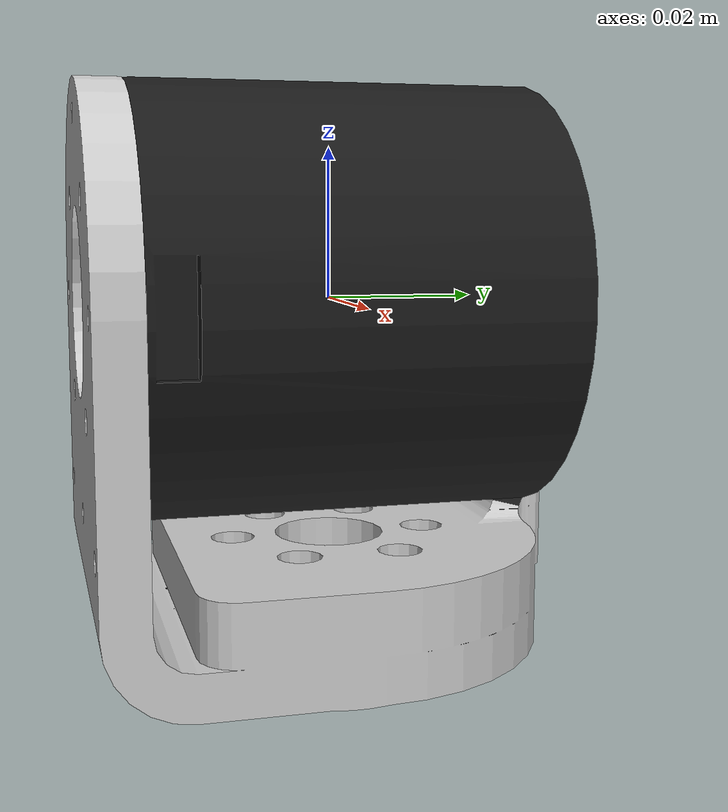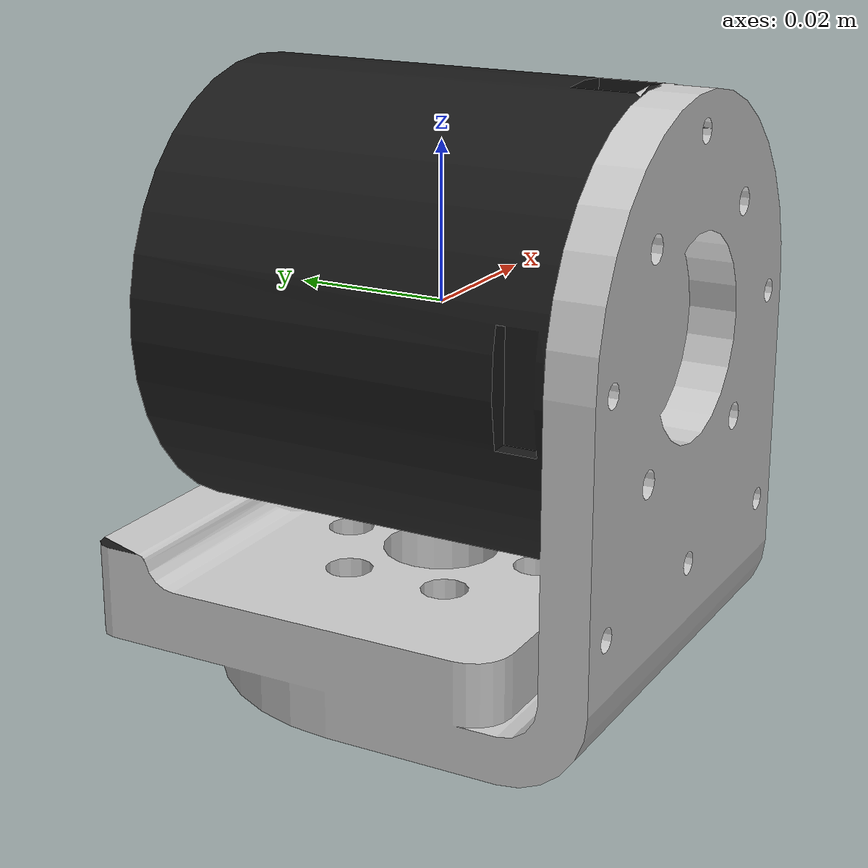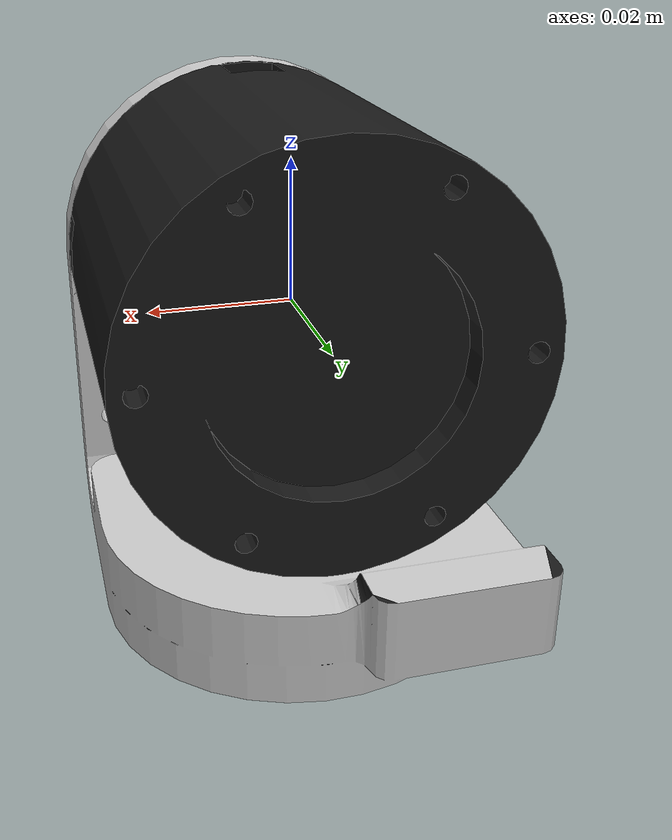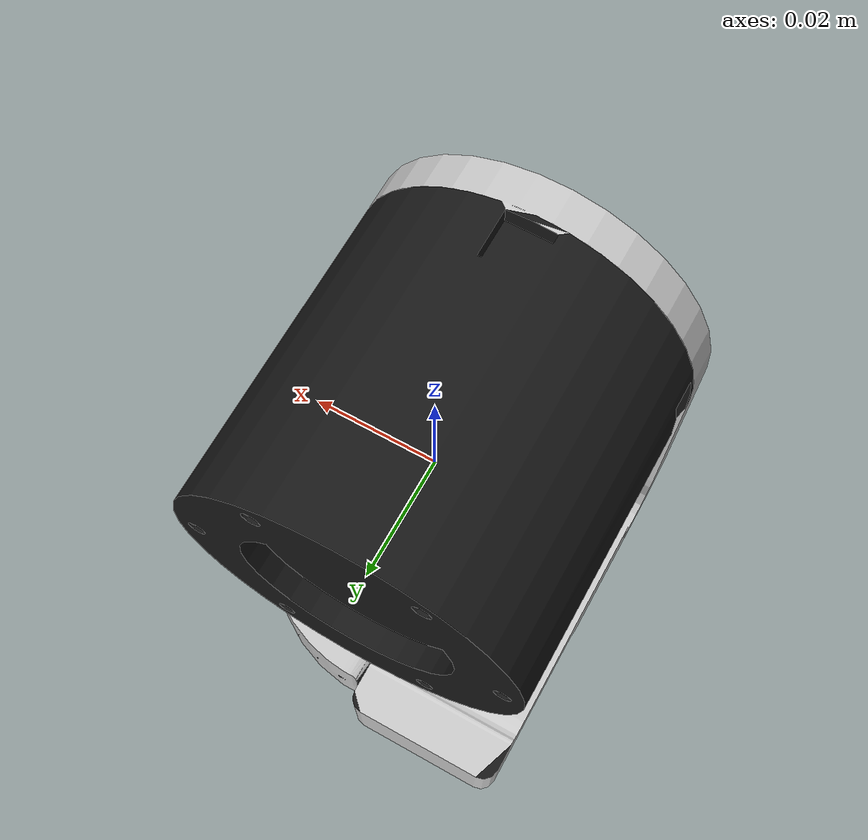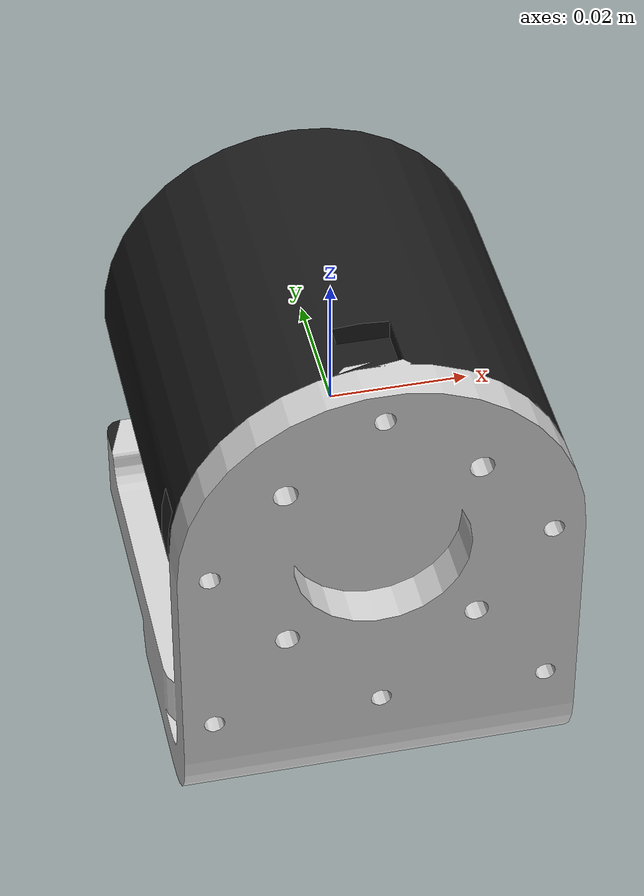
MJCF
<mujoco model="link1">
  <default>
    <default class="visual">
      <geom group="2" type="mesh" contype="0" conaffinity="0"/>
    </default>
    <default class="collision">
      <geom group="3" type="mesh"/>
    </default>
  </default>
  <asset>
    <material name="motor.001" specular="0.5" shininess="0.25" rgba="0.100000 0.100000 0.100000 1.000000"/>
    <material name="shell" specular="0.5" shininess="0.49" rgba="0.800000 0.800000 0.800000 1.000000"/>
    <mesh file="link1_0.obj"/>
    <mesh file="link1_1.obj"/>
    <mesh file="link1_collision_0.obj"/>
    <mesh file="link1_collision_1.obj"/>
  </asset>
  <worldbody>
    <body name="link1">
      <geom mesh="link1_0" material="shell" class="visual"/>
      <geom mesh="link1_1" material="motor.001" class="visual"/>
      <geom mesh="link1_collision_0" rgba="0.880668310108505 0.8062079275747244 0.8714052842842306 1" class="collision"/>
      <geom mesh="link1_collision_1" rgba="0.6720045859876099 0.8308539123238056 0.8334353313134755 1" class="collision"/>
    </body>
  </worldbody>
</mujoco>
